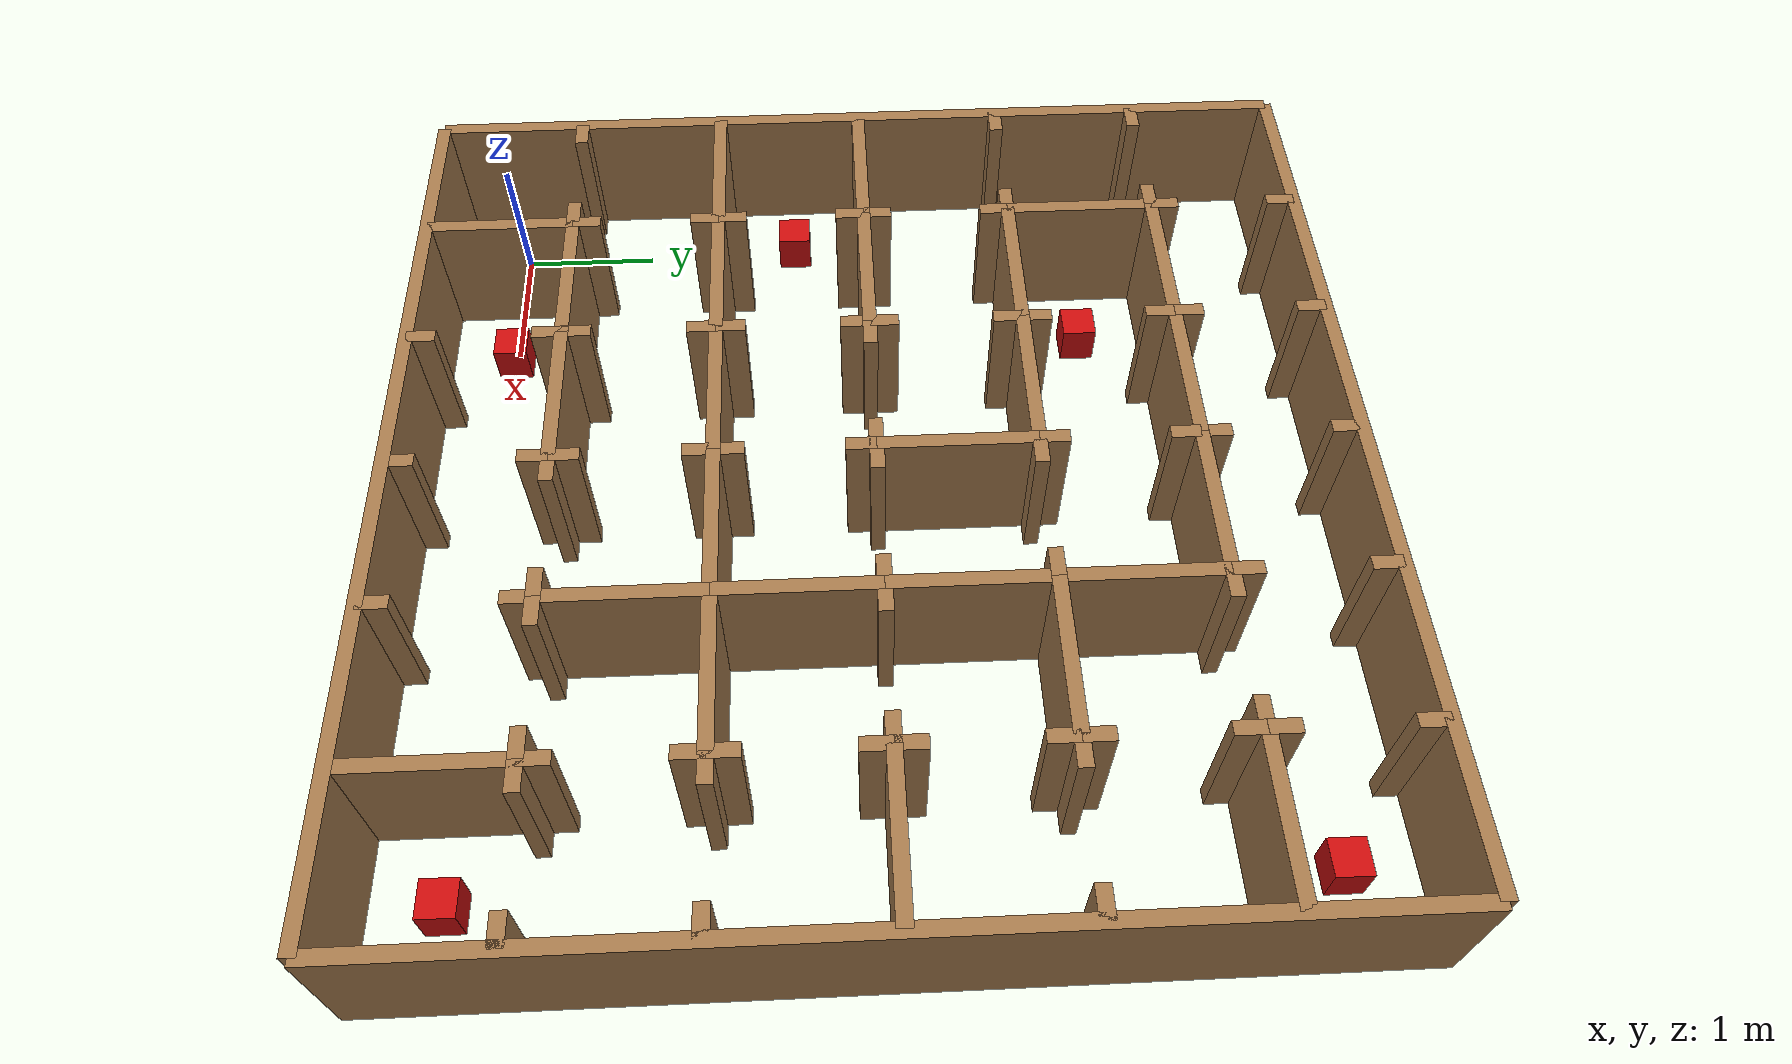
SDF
<sdf version="1.5">
 <world name="tars_borde_callejones">
  <physics type="ode">
   <max_step_size>0.001</max_step_size>
   <real_time_factor>1</real_time_factor>
   <real_time_update_rate>1000</real_time_update_rate>
   <gravity>0 0 -9.8</gravity>
  </physics>
  <plugin filename="gz-sim-physics-system" name="gz::sim::systems::Physics"/>
  <plugin filename="gz-sim-user-commands-system" name="gz::sim::systems::UserCommands"/>
  <plugin filename="gz-sim-scene-broadcaster-system" name="gz::sim::systems::SceneBroadcaster"/>
  <plugin filename="gz-sim-contact-system" name="gz::sim::systems::Contact"/>
  <plugin filename="gz-sim-sensors-system" name="gz::sim::systems::Sensors">
   <render_engine>ogre2</render_engine>
  </plugin>
  <plugin filename="gz-sim-imu-system" name="gz::sim::systems::Imu"/>
  <scene>
   <shadows>false</shadows>
   <ambient>0.2 0.2 0.2 1</ambient>
   <background>1 1 1 1</background>
   <grid>false</grid>
   <origin_visual>false</origin_visual>
  </scene>
  <include><uri>model://sun</uri></include>
  <light name="camera_spot_1_light" type="spot">
   <pose>-6 4 4 0 -1 -0.8</pose>
   <diffuse>0.5 0.5 0.5 1</diffuse>
   <specular>0.1 0.1 0.1 1</specular>
   <direction>0 0 -1</direction>
   <attenuation>
    <range>20</range>
    <constant>0.2</constant>
    <linear>0.01</linear>
    <quadratic>0.001</quadratic>
   </attenuation>
   <cast_shadows>0</cast_shadows>
   <spot><inner_angle>0.6</inner_angle><outer_angle>1</outer_angle><falloff>1</falloff></spot>
  </light>
  <light name="camera_spot_2_light" type="spot">
   <pose>5 -3 4 0 0.8 -0.6</pose>
   <diffuse>0.5 0.5 0.5 1</diffuse>
   <specular>0.1 0.1 0.1 1</specular>
   <direction>0 0 -1</direction>
   <attenuation>
    <range>20</range>
    <constant>0.3</constant>
    <linear>0.01</linear>
    <quadratic>0.001</quadratic>
   </attenuation>
   <cast_shadows>0</cast_shadows>
   <spot><inner_angle>0.6</inner_angle><outer_angle>1</outer_angle><falloff>1</falloff></spot>
  </light>
  <model name="paredes_borde">
   <static>true</static>
   <link name="pared_1">
    <pose>2.7500000000000004 -0.55 0.5 0 0 0</pose>
    <collision name="collision">
     <geometry><box><size>6.6000000000000005 0.1 1.0</size></box></geometry>
    </collision>
    <visual name="visual">
     <geometry><box><size>6.6000000000000005 0.1 1.0</size></box></geometry>
     <material><ambient>0.65 0.48 0.30 1</ambient><diffuse>0.65 0.48 0.30 1</diffuse></material>
    </visual>
   </link>
   <link name="pared_2">
    <pose>6.050000000000001 2.7500000000000004 0.5 0 0 0</pose>
    <collision name="collision">
     <geometry><box><size>0.1 6.6000000000000005 1.0</size></box></geometry>
    </collision>
    <visual name="visual">
     <geometry><box><size>0.1 6.6000000000000005 1.0</size></box></geometry>
     <material><ambient>0.65 0.48 0.30 1</ambient><diffuse>0.65 0.48 0.30 1</diffuse></material>
    </visual>
   </link>
   <link name="pared_3">
    <pose>2.7500000000000004 6.050000000000001 0.5 0 0 0</pose>
    <collision name="collision">
     <geometry><box><size>6.6000000000000005 0.1 1.0</size></box></geometry>
    </collision>
    <visual name="visual">
     <geometry><box><size>6.6000000000000005 0.1 1.0</size></box></geometry>
     <material><ambient>0.65 0.48 0.30 1</ambient><diffuse>0.65 0.48 0.30 1</diffuse></material>
    </visual>
   </link>
   <link name="pared_4">
    <pose>-0.55 2.7500000000000004 0.5 0 0 0</pose>
    <collision name="collision">
     <geometry><box><size>0.1 6.6000000000000005 1.0</size></box></geometry>
    </collision>
    <visual name="visual">
     <geometry><box><size>0.1 6.6000000000000005 1.0</size></box></geometry>
     <material><ambient>0.65 0.48 0.30 1</ambient><diffuse>0.65 0.48 0.30 1</diffuse></material>
    </visual>
   </link>
   <link name="pared_5">
    <pose>0.55 0.0 0.5 0 0 0</pose>
    <collision name="collision"><geometry><box><size>0.1 1.1 1.0</size></box></geometry></collision>
    <visual name="visual">
     <geometry><box><size>0.1 1.1 1.0</size></box></geometry>
     <material><ambient>0.65 0.48 0.30 1</ambient><diffuse>0.65 0.48 0.30 1</diffuse></material>
    </visual>
   </link>
   <link name="pared_6">
    <pose>-0.44500000000000006 0.55 0.5 0 0 0</pose>
    <collision name="collision">
     <geometry><box><size>0.21000000000000002 0.1 1.0</size></box></geometry>
    </collision>
    <visual name="visual">
     <geometry><box><size>0.21000000000000002 0.1 1.0</size></box></geometry>
     <material><ambient>0.65 0.48 0.30 1</ambient><diffuse>0.65 0.48 0.30 1</diffuse></material>
    </visual>
   </link>
   <link name="pared_7">
    <pose>0.44500000000000006 0.55 0.5 0 0 0</pose>
    <collision name="collision">
     <geometry><box><size>0.21000000000000002 0.1 1.0</size></box></geometry>
    </collision>
    <visual name="visual">
     <geometry><box><size>0.21000000000000002 0.1 1.0</size></box></geometry>
     <material><ambient>0.65 0.48 0.30 1</ambient><diffuse>0.65 0.48 0.30 1</diffuse></material>
    </visual>
   </link>
   <link name="pared_8">
    <pose>0.55 0.655 0.5 0 0 0</pose>
    <collision name="collision">
     <geometry><box><size>0.1 0.20999999999999996 1.0</size></box></geometry>
    </collision>
    <visual name="visual">
     <geometry><box><size>0.1 0.20999999999999996 1.0</size></box></geometry>
     <material><ambient>0.65 0.48 0.30 1</ambient><diffuse>0.65 0.48 0.30 1</diffuse></material>
    </visual>
   </link>
   <link name="pared_9">
    <pose>0.55 1.5450000000000002 0.5 0 0 0</pose>
    <collision name="collision">
     <geometry><box><size>0.1 0.20999999999999996 1.0</size></box></geometry>
    </collision>
    <visual name="visual">
     <geometry><box><size>0.1 0.20999999999999996 1.0</size></box></geometry>
     <material><ambient>0.65 0.48 0.30 1</ambient><diffuse>0.65 0.48 0.30 1</diffuse></material>
    </visual>
   </link>
   <link name="pared_10">
    <pose>0.0 1.6500000000000001 0.5 0 0 0</pose>
    <collision name="collision"><geometry><box><size>1.1 0.1 1.0</size></box></geometry></collision>
    <visual name="visual">
     <geometry><box><size>1.1 0.1 1.0</size></box></geometry>
     <material><ambient>0.65 0.48 0.30 1</ambient><diffuse>0.65 0.48 0.30 1</diffuse></material>
    </visual>
   </link>
   <link name="pared_11">
    <pose>0.55 1.7550000000000001 0.5 0 0 0</pose>
    <collision name="collision">
     <geometry><box><size>0.1 0.20999999999999996 1.0</size></box></geometry>
    </collision>
    <visual name="visual">
     <geometry><box><size>0.1 0.20999999999999996 1.0</size></box></geometry>
     <material><ambient>0.65 0.48 0.30 1</ambient><diffuse>0.65 0.48 0.30 1</diffuse></material>
    </visual>
   </link>
   <link name="pared_12">
    <pose>0.55 2.645 0.5 0 0 0</pose>
    <collision name="collision">
     <geometry><box><size>0.1 0.20999999999999996 1.0</size></box></geometry>
    </collision>
    <visual name="visual">
     <geometry><box><size>0.1 0.20999999999999996 1.0</size></box></geometry>
     <material><ambient>0.65 0.48 0.30 1</ambient><diffuse>0.65 0.48 0.30 1</diffuse></material>
    </visual>
   </link>
   <link name="pared_13">
    <pose>0.0 2.75 0.5 0 0 0</pose>
    <collision name="collision"><geometry><box><size>1.1 0.1 1.0</size></box></geometry></collision>
    <visual name="visual">
     <geometry><box><size>1.1 0.1 1.0</size></box></geometry>
     <material><ambient>0.65 0.48 0.30 1</ambient><diffuse>0.65 0.48 0.30 1</diffuse></material>
    </visual>
   </link>
   <link name="pared_14">
    <pose>0.55 2.8550000000000004 0.5 0 0 0</pose>
    <collision name="collision">
     <geometry><box><size>0.1 0.2100000000000004 1.0</size></box></geometry>
    </collision>
    <visual name="visual">
     <geometry><box><size>0.1 0.2100000000000004 1.0</size></box></geometry>
     <material><ambient>0.65 0.48 0.30 1</ambient><diffuse>0.65 0.48 0.30 1</diffuse></material>
    </visual>
   </link>
   <link name="pared_15">
    <pose>0.55 3.745 0.5 0 0 0</pose>
    <collision name="collision">
     <geometry><box><size>0.1 0.2100000000000004 1.0</size></box></geometry>
    </collision>
    <visual name="visual">
     <geometry><box><size>0.1 0.2100000000000004 1.0</size></box></geometry>
     <material><ambient>0.65 0.48 0.30 1</ambient><diffuse>0.65 0.48 0.30 1</diffuse></material>
    </visual>
   </link>
   <link name="pared_16">
    <pose>-0.44500000000000006 3.8500000000000005 0.5 0 0 0</pose>
    <collision name="collision">
     <geometry><box><size>0.21000000000000002 0.1 1.0</size></box></geometry>
    </collision>
    <visual name="visual">
     <geometry><box><size>0.21000000000000002 0.1 1.0</size></box></geometry>
     <material><ambient>0.65 0.48 0.30 1</ambient><diffuse>0.65 0.48 0.30 1</diffuse></material>
    </visual>
   </link>
   <link name="pared_17">
    <pose>0.44500000000000006 3.8500000000000005 0.5 0 0 0</pose>
    <collision name="collision">
     <geometry><box><size>0.21000000000000002 0.1 1.0</size></box></geometry>
    </collision>
    <visual name="visual">
     <geometry><box><size>0.21000000000000002 0.1 1.0</size></box></geometry>
     <material><ambient>0.65 0.48 0.30 1</ambient><diffuse>0.65 0.48 0.30 1</diffuse></material>
    </visual>
   </link>
   <link name="pared_18">
    <pose>0.55 4.4 0.5 0 0 0</pose>
    <collision name="collision">
     <geometry><box><size>0.1 1.0999999999999996 1.0</size></box></geometry>
    </collision>
    <visual name="visual">
     <geometry><box><size>0.1 1.0999999999999996 1.0</size></box></geometry>
     <material><ambient>0.65 0.48 0.30 1</ambient><diffuse>0.65 0.48 0.30 1</diffuse></material>
    </visual>
   </link>
   <link name="pared_19">
    <pose>-0.44500000000000006 4.95 0.5 0 0 0</pose>
    <collision name="collision">
     <geometry><box><size>0.21000000000000002 0.1 1.0</size></box></geometry>
    </collision>
    <visual name="visual">
     <geometry><box><size>0.21000000000000002 0.1 1.0</size></box></geometry>
     <material><ambient>0.65 0.48 0.30 1</ambient><diffuse>0.65 0.48 0.30 1</diffuse></material>
    </visual>
   </link>
   <link name="pared_20">
    <pose>0.44500000000000006 4.95 0.5 0 0 0</pose>
    <collision name="collision">
     <geometry><box><size>0.21000000000000002 0.1 1.0</size></box></geometry>
    </collision>
    <visual name="visual">
     <geometry><box><size>0.21000000000000002 0.1 1.0</size></box></geometry>
     <material><ambient>0.65 0.48 0.30 1</ambient><diffuse>0.65 0.48 0.30 1</diffuse></material>
    </visual>
   </link>
   <link name="pared_21">
    <pose>0.55 5.055 0.5 0 0 0</pose>
    <collision name="collision">
     <geometry><box><size>0.1 0.20999999999999996 1.0</size></box></geometry>
    </collision>
    <visual name="visual">
     <geometry><box><size>0.1 0.20999999999999996 1.0</size></box></geometry>
     <material><ambient>0.65 0.48 0.30 1</ambient><diffuse>0.65 0.48 0.30 1</diffuse></material>
    </visual>
   </link>
   <link name="pared_22">
    <pose>0.55 5.945 0.5 0 0 0</pose>
    <collision name="collision">
     <geometry><box><size>0.1 0.20999999999999996 1.0</size></box></geometry>
    </collision>
    <visual name="visual">
     <geometry><box><size>0.1 0.20999999999999996 1.0</size></box></geometry>
     <material><ambient>0.65 0.48 0.30 1</ambient><diffuse>0.65 0.48 0.30 1</diffuse></material>
    </visual>
   </link>
   <link name="pared_23">
    <pose>1.6500000000000001 -0.44500000000000006 0.5 0 0 0</pose>
    <collision name="collision">
     <geometry><box><size>0.1 0.21000000000000002 1.0</size></box></geometry>
    </collision>
    <visual name="visual">
     <geometry><box><size>0.1 0.21000000000000002 1.0</size></box></geometry>
     <material><ambient>0.65 0.48 0.30 1</ambient><diffuse>0.65 0.48 0.30 1</diffuse></material>
    </visual>
   </link>
   <link name="pared_24">
    <pose>1.6500000000000001 0.44500000000000006 0.5 0 0 0</pose>
    <collision name="collision">
     <geometry><box><size>0.1 0.21000000000000002 1.0</size></box></geometry>
    </collision>
    <visual name="visual">
     <geometry><box><size>0.1 0.21000000000000002 1.0</size></box></geometry>
     <material><ambient>0.65 0.48 0.30 1</ambient><diffuse>0.65 0.48 0.30 1</diffuse></material>
    </visual>
   </link>
   <link name="pared_25">
    <pose>1.1 0.55 0.5 0 0 0</pose>
    <collision name="collision"><geometry><box><size>1.1 0.1 1.0</size></box></geometry></collision>
    <visual name="visual">
     <geometry><box><size>1.1 0.1 1.0</size></box></geometry>
     <material><ambient>0.65 0.48 0.30 1</ambient><diffuse>0.65 0.48 0.30 1</diffuse></material>
    </visual>
   </link>
   <link name="pared_26">
    <pose>1.6500000000000001 0.655 0.5 0 0 0</pose>
    <collision name="collision">
     <geometry><box><size>0.1 0.20999999999999996 1.0</size></box></geometry>
    </collision>
    <visual name="visual">
     <geometry><box><size>0.1 0.20999999999999996 1.0</size></box></geometry>
     <material><ambient>0.65 0.48 0.30 1</ambient><diffuse>0.65 0.48 0.30 1</diffuse></material>
    </visual>
   </link>
   <link name="pared_27">
    <pose>1.6500000000000001 1.5450000000000002 0.5 0 0 0</pose>
    <collision name="collision">
     <geometry><box><size>0.1 0.20999999999999996 1.0</size></box></geometry>
    </collision>
    <visual name="visual">
     <geometry><box><size>0.1 0.20999999999999996 1.0</size></box></geometry>
     <material><ambient>0.65 0.48 0.30 1</ambient><diffuse>0.65 0.48 0.30 1</diffuse></material>
    </visual>
   </link>
   <link name="pared_28">
    <pose>1.1 1.6500000000000001 0.5 0 0 0</pose>
    <collision name="collision"><geometry><box><size>1.1 0.1 1.0</size></box></geometry></collision>
    <visual name="visual">
     <geometry><box><size>1.1 0.1 1.0</size></box></geometry>
     <material><ambient>0.65 0.48 0.30 1</ambient><diffuse>0.65 0.48 0.30 1</diffuse></material>
    </visual>
   </link>
   <link name="pared_29">
    <pose>1.6500000000000001 1.7550000000000001 0.5 0 0 0</pose>
    <collision name="collision">
     <geometry><box><size>0.1 0.20999999999999996 1.0</size></box></geometry>
    </collision>
    <visual name="visual">
     <geometry><box><size>0.1 0.20999999999999996 1.0</size></box></geometry>
     <material><ambient>0.65 0.48 0.30 1</ambient><diffuse>0.65 0.48 0.30 1</diffuse></material>
    </visual>
   </link>
   <link name="pared_30">
    <pose>1.6500000000000001 2.645 0.5 0 0 0</pose>
    <collision name="collision">
     <geometry><box><size>0.1 0.20999999999999996 1.0</size></box></geometry>
    </collision>
    <visual name="visual">
     <geometry><box><size>0.1 0.20999999999999996 1.0</size></box></geometry>
     <material><ambient>0.65 0.48 0.30 1</ambient><diffuse>0.65 0.48 0.30 1</diffuse></material>
    </visual>
   </link>
   <link name="pared_31">
    <pose>1.1 2.75 0.5 0 0 0</pose>
    <collision name="collision"><geometry><box><size>1.1 0.1 1.0</size></box></geometry></collision>
    <visual name="visual">
     <geometry><box><size>1.1 0.1 1.0</size></box></geometry>
     <material><ambient>0.65 0.48 0.30 1</ambient><diffuse>0.65 0.48 0.30 1</diffuse></material>
    </visual>
   </link>
   <link name="pared_32">
    <pose>1.6500000000000001 2.8550000000000004 0.5 0 0 0</pose>
    <collision name="collision">
     <geometry><box><size>0.1 0.2100000000000004 1.0</size></box></geometry>
    </collision>
    <visual name="visual">
     <geometry><box><size>0.1 0.2100000000000004 1.0</size></box></geometry>
     <material><ambient>0.65 0.48 0.30 1</ambient><diffuse>0.65 0.48 0.30 1</diffuse></material>
    </visual>
   </link>
   <link name="pared_33">
    <pose>1.6500000000000001 3.745 0.5 0 0 0</pose>
    <collision name="collision">
     <geometry><box><size>0.1 0.2100000000000004 1.0</size></box></geometry>
    </collision>
    <visual name="visual">
     <geometry><box><size>0.1 0.2100000000000004 1.0</size></box></geometry>
     <material><ambient>0.65 0.48 0.30 1</ambient><diffuse>0.65 0.48 0.30 1</diffuse></material>
    </visual>
   </link>
   <link name="pared_34">
    <pose>1.1 3.8500000000000005 0.5 0 0 0</pose>
    <collision name="collision"><geometry><box><size>1.1 0.1 1.0</size></box></geometry></collision>
    <visual name="visual">
     <geometry><box><size>1.1 0.1 1.0</size></box></geometry>
     <material><ambient>0.65 0.48 0.30 1</ambient><diffuse>0.65 0.48 0.30 1</diffuse></material>
    </visual>
   </link>
   <link name="pared_35">
    <pose>1.6500000000000001 3.9550000000000005 0.5 0 0 0</pose>
    <collision name="collision">
     <geometry><box><size>0.1 0.20999999999999996 1.0</size></box></geometry>
    </collision>
    <visual name="visual">
     <geometry><box><size>0.1 0.20999999999999996 1.0</size></box></geometry>
     <material><ambient>0.65 0.48 0.30 1</ambient><diffuse>0.65 0.48 0.30 1</diffuse></material>
    </visual>
   </link>
   <link name="pared_36">
    <pose>1.6500000000000001 4.845000000000001 0.5 0 0 0</pose>
    <collision name="collision">
     <geometry><box><size>0.1 0.20999999999999996 1.0</size></box></geometry>
    </collision>
    <visual name="visual">
     <geometry><box><size>0.1 0.20999999999999996 1.0</size></box></geometry>
     <material><ambient>0.65 0.48 0.30 1</ambient><diffuse>0.65 0.48 0.30 1</diffuse></material>
    </visual>
   </link>
   <link name="pared_37">
    <pose>1.1 4.95 0.5 0 0 0</pose>
    <collision name="collision"><geometry><box><size>1.1 0.1 1.0</size></box></geometry></collision>
    <visual name="visual">
     <geometry><box><size>1.1 0.1 1.0</size></box></geometry>
     <material><ambient>0.65 0.48 0.30 1</ambient><diffuse>0.65 0.48 0.30 1</diffuse></material>
    </visual>
   </link>
   <link name="pared_38">
    <pose>1.6500000000000001 5.055 0.5 0 0 0</pose>
    <collision name="collision">
     <geometry><box><size>0.1 0.20999999999999996 1.0</size></box></geometry>
    </collision>
    <visual name="visual">
     <geometry><box><size>0.1 0.20999999999999996 1.0</size></box></geometry>
     <material><ambient>0.65 0.48 0.30 1</ambient><diffuse>0.65 0.48 0.30 1</diffuse></material>
    </visual>
   </link>
   <link name="pared_39">
    <pose>1.6500000000000001 5.945 0.5 0 0 0</pose>
    <collision name="collision">
     <geometry><box><size>0.1 0.20999999999999996 1.0</size></box></geometry>
    </collision>
    <visual name="visual">
     <geometry><box><size>0.1 0.20999999999999996 1.0</size></box></geometry>
     <material><ambient>0.65 0.48 0.30 1</ambient><diffuse>0.65 0.48 0.30 1</diffuse></material>
    </visual>
   </link>
   <link name="pared_40">
    <pose>2.75 -0.44500000000000006 0.5 0 0 0</pose>
    <collision name="collision">
     <geometry><box><size>0.1 0.21000000000000002 1.0</size></box></geometry>
    </collision>
    <visual name="visual">
     <geometry><box><size>0.1 0.21000000000000002 1.0</size></box></geometry>
     <material><ambient>0.65 0.48 0.30 1</ambient><diffuse>0.65 0.48 0.30 1</diffuse></material>
    </visual>
   </link>
   <link name="pared_41">
    <pose>2.75 0.44500000000000006 0.5 0 0 0</pose>
    <collision name="collision">
     <geometry><box><size>0.1 0.21000000000000002 1.0</size></box></geometry>
    </collision>
    <visual name="visual">
     <geometry><box><size>0.1 0.21000000000000002 1.0</size></box></geometry>
     <material><ambient>0.65 0.48 0.30 1</ambient><diffuse>0.65 0.48 0.30 1</diffuse></material>
    </visual>
   </link>
   <link name="pared_42">
    <pose>2.2 0.55 0.5 0 0 0</pose>
    <collision name="collision">
     <geometry><box><size>1.0999999999999999 0.1 1.0</size></box></geometry>
    </collision>
    <visual name="visual">
     <geometry><box><size>1.0999999999999999 0.1 1.0</size></box></geometry>
     <material><ambient>0.65 0.48 0.30 1</ambient><diffuse>0.65 0.48 0.30 1</diffuse></material>
    </visual>
   </link>
   <link name="pared_43">
    <pose>2.75 0.655 0.5 0 0 0</pose>
    <collision name="collision">
     <geometry><box><size>0.1 0.20999999999999996 1.0</size></box></geometry>
    </collision>
    <visual name="visual">
     <geometry><box><size>0.1 0.20999999999999996 1.0</size></box></geometry>
     <material><ambient>0.65 0.48 0.30 1</ambient><diffuse>0.65 0.48 0.30 1</diffuse></material>
    </visual>
   </link>
   <link name="pared_44">
    <pose>2.75 1.5450000000000002 0.5 0 0 0</pose>
    <collision name="collision">
     <geometry><box><size>0.1 0.20999999999999996 1.0</size></box></geometry>
    </collision>
    <visual name="visual">
     <geometry><box><size>0.1 0.20999999999999996 1.0</size></box></geometry>
     <material><ambient>0.65 0.48 0.30 1</ambient><diffuse>0.65 0.48 0.30 1</diffuse></material>
    </visual>
   </link>
   <link name="pared_45">
    <pose>2.2 1.6500000000000001 0.5 0 0 0</pose>
    <collision name="collision">
     <geometry><box><size>1.0999999999999999 0.1 1.0</size></box></geometry>
    </collision>
    <visual name="visual">
     <geometry><box><size>1.0999999999999999 0.1 1.0</size></box></geometry>
     <material><ambient>0.65 0.48 0.30 1</ambient><diffuse>0.65 0.48 0.30 1</diffuse></material>
    </visual>
   </link>
   <link name="pared_46">
    <pose>2.75 1.7550000000000001 0.5 0 0 0</pose>
    <collision name="collision">
     <geometry><box><size>0.1 0.20999999999999996 1.0</size></box></geometry>
    </collision>
    <visual name="visual">
     <geometry><box><size>0.1 0.20999999999999996 1.0</size></box></geometry>
     <material><ambient>0.65 0.48 0.30 1</ambient><diffuse>0.65 0.48 0.30 1</diffuse></material>
    </visual>
   </link>
   <link name="pared_47">
    <pose>2.75 2.645 0.5 0 0 0</pose>
    <collision name="collision">
     <geometry><box><size>0.1 0.20999999999999996 1.0</size></box></geometry>
    </collision>
    <visual name="visual">
     <geometry><box><size>0.1 0.20999999999999996 1.0</size></box></geometry>
     <material><ambient>0.65 0.48 0.30 1</ambient><diffuse>0.65 0.48 0.30 1</diffuse></material>
    </visual>
   </link>
   <link name="pared_48">
    <pose>1.7550000000000001 2.75 0.5 0 0 0</pose>
    <collision name="collision">
     <geometry><box><size>0.20999999999999996 0.1 1.0</size></box></geometry>
    </collision>
    <visual name="visual">
     <geometry><box><size>0.20999999999999996 0.1 1.0</size></box></geometry>
     <material><ambient>0.65 0.48 0.30 1</ambient><diffuse>0.65 0.48 0.30 1</diffuse></material>
    </visual>
   </link>
   <link name="pared_49">
    <pose>2.645 2.75 0.5 0 0 0</pose>
    <collision name="collision">
     <geometry><box><size>0.20999999999999996 0.1 1.0</size></box></geometry>
    </collision>
    <visual name="visual">
     <geometry><box><size>0.20999999999999996 0.1 1.0</size></box></geometry>
     <material><ambient>0.65 0.48 0.30 1</ambient><diffuse>0.65 0.48 0.30 1</diffuse></material>
    </visual>
   </link>
   <link name="pared_50">
    <pose>2.75 3.3000000000000003 0.5 0 0 0</pose>
    <collision name="collision">
     <geometry><box><size>0.1 1.1000000000000005 1.0</size></box></geometry>
    </collision>
    <visual name="visual">
     <geometry><box><size>0.1 1.1000000000000005 1.0</size></box></geometry>
     <material><ambient>0.65 0.48 0.30 1</ambient><diffuse>0.65 0.48 0.30 1</diffuse></material>
    </visual>
   </link>
   <link name="pared_51">
    <pose>2.2 3.8500000000000005 0.5 0 0 0</pose>
    <collision name="collision">
     <geometry><box><size>1.0999999999999999 0.1 1.0</size></box></geometry>
    </collision>
    <visual name="visual">
     <geometry><box><size>1.0999999999999999 0.1 1.0</size></box></geometry>
     <material><ambient>0.65 0.48 0.30 1</ambient><diffuse>0.65 0.48 0.30 1</diffuse></material>
    </visual>
   </link>
   <link name="pared_52">
    <pose>2.75 3.9550000000000005 0.5 0 0 0</pose>
    <collision name="collision">
     <geometry><box><size>0.1 0.20999999999999996 1.0</size></box></geometry>
    </collision>
    <visual name="visual">
     <geometry><box><size>0.1 0.20999999999999996 1.0</size></box></geometry>
     <material><ambient>0.65 0.48 0.30 1</ambient><diffuse>0.65 0.48 0.30 1</diffuse></material>
    </visual>
   </link>
   <link name="pared_53">
    <pose>2.75 4.845000000000001 0.5 0 0 0</pose>
    <collision name="collision">
     <geometry><box><size>0.1 0.20999999999999996 1.0</size></box></geometry>
    </collision>
    <visual name="visual">
     <geometry><box><size>0.1 0.20999999999999996 1.0</size></box></geometry>
     <material><ambient>0.65 0.48 0.30 1</ambient><diffuse>0.65 0.48 0.30 1</diffuse></material>
    </visual>
   </link>
   <link name="pared_54">
    <pose>2.2 4.95 0.5 0 0 0</pose>
    <collision name="collision">
     <geometry><box><size>1.0999999999999999 0.1 1.0</size></box></geometry>
    </collision>
    <visual name="visual">
     <geometry><box><size>1.0999999999999999 0.1 1.0</size></box></geometry>
     <material><ambient>0.65 0.48 0.30 1</ambient><diffuse>0.65 0.48 0.30 1</diffuse></material>
    </visual>
   </link>
   <link name="pared_55">
    <pose>2.75 5.055 0.5 0 0 0</pose>
    <collision name="collision">
     <geometry><box><size>0.1 0.20999999999999996 1.0</size></box></geometry>
    </collision>
    <visual name="visual">
     <geometry><box><size>0.1 0.20999999999999996 1.0</size></box></geometry>
     <material><ambient>0.65 0.48 0.30 1</ambient><diffuse>0.65 0.48 0.30 1</diffuse></material>
    </visual>
   </link>
   <link name="pared_56">
    <pose>2.75 5.945 0.5 0 0 0</pose>
    <collision name="collision">
     <geometry><box><size>0.1 0.20999999999999996 1.0</size></box></geometry>
    </collision>
    <visual name="visual">
     <geometry><box><size>0.1 0.20999999999999996 1.0</size></box></geometry>
     <material><ambient>0.65 0.48 0.30 1</ambient><diffuse>0.65 0.48 0.30 1</diffuse></material>
    </visual>
   </link>
   <link name="pared_57">
    <pose>3.8500000000000005 -0.44500000000000006 0.5 0 0 0</pose>
    <collision name="collision">
     <geometry><box><size>0.1 0.21000000000000002 1.0</size></box></geometry>
    </collision>
    <visual name="visual">
     <geometry><box><size>0.1 0.21000000000000002 1.0</size></box></geometry>
     <material><ambient>0.65 0.48 0.30 1</ambient><diffuse>0.65 0.48 0.30 1</diffuse></material>
    </visual>
   </link>
   <link name="pared_58">
    <pose>3.8500000000000005 0.44500000000000006 0.5 0 0 0</pose>
    <collision name="collision">
     <geometry><box><size>0.1 0.21000000000000002 1.0</size></box></geometry>
    </collision>
    <visual name="visual">
     <geometry><box><size>0.1 0.21000000000000002 1.0</size></box></geometry>
     <material><ambient>0.65 0.48 0.30 1</ambient><diffuse>0.65 0.48 0.30 1</diffuse></material>
    </visual>
   </link>
   <link name="pared_59">
    <pose>2.8550000000000004 0.55 0.5 0 0 0</pose>
    <collision name="collision">
     <geometry><box><size>0.2100000000000004 0.1 1.0</size></box></geometry>
    </collision>
    <visual name="visual">
     <geometry><box><size>0.2100000000000004 0.1 1.0</size></box></geometry>
     <material><ambient>0.65 0.48 0.30 1</ambient><diffuse>0.65 0.48 0.30 1</diffuse></material>
    </visual>
   </link>
   <link name="pared_60">
    <pose>3.745 0.55 0.5 0 0 0</pose>
    <collision name="collision">
     <geometry><box><size>0.2100000000000004 0.1 1.0</size></box></geometry>
    </collision>
    <visual name="visual">
     <geometry><box><size>0.2100000000000004 0.1 1.0</size></box></geometry>
     <material><ambient>0.65 0.48 0.30 1</ambient><diffuse>0.65 0.48 0.30 1</diffuse></material>
    </visual>
   </link>
   <link name="pared_61">
    <pose>3.8500000000000005 1.1 0.5 0 0 0</pose>
    <collision name="collision"><geometry><box><size>0.1 1.1 1.0</size></box></geometry></collision>
    <visual name="visual">
     <geometry><box><size>0.1 1.1 1.0</size></box></geometry>
     <material><ambient>0.65 0.48 0.30 1</ambient><diffuse>0.65 0.48 0.30 1</diffuse></material>
    </visual>
   </link>
   <link name="pared_62">
    <pose>3.3000000000000003 1.6500000000000001 0.5 0 0 0</pose>
    <collision name="collision">
     <geometry><box><size>1.1000000000000005 0.1 1.0</size></box></geometry>
    </collision>
    <visual name="visual">
     <geometry><box><size>1.1000000000000005 0.1 1.0</size></box></geometry>
     <material><ambient>0.65 0.48 0.30 1</ambient><diffuse>0.65 0.48 0.30 1</diffuse></material>
    </visual>
   </link>
   <link name="pared_63">
    <pose>3.8500000000000005 2.2 0.5 0 0 0</pose>
    <collision name="collision">
     <geometry><box><size>0.1 1.0999999999999999 1.0</size></box></geometry>
    </collision>
    <visual name="visual">
     <geometry><box><size>0.1 1.0999999999999999 1.0</size></box></geometry>
     <material><ambient>0.65 0.48 0.30 1</ambient><diffuse>0.65 0.48 0.30 1</diffuse></material>
    </visual>
   </link>
   <link name="pared_64">
    <pose>2.8550000000000004 2.75 0.5 0 0 0</pose>
    <collision name="collision">
     <geometry><box><size>0.2100000000000004 0.1 1.0</size></box></geometry>
    </collision>
    <visual name="visual">
     <geometry><box><size>0.2100000000000004 0.1 1.0</size></box></geometry>
     <material><ambient>0.65 0.48 0.30 1</ambient><diffuse>0.65 0.48 0.30 1</diffuse></material>
    </visual>
   </link>
   <link name="pared_65">
    <pose>3.745 2.75 0.5 0 0 0</pose>
    <collision name="collision">
     <geometry><box><size>0.2100000000000004 0.1 1.0</size></box></geometry>
    </collision>
    <visual name="visual">
     <geometry><box><size>0.2100000000000004 0.1 1.0</size></box></geometry>
     <material><ambient>0.65 0.48 0.30 1</ambient><diffuse>0.65 0.48 0.30 1</diffuse></material>
    </visual>
   </link>
   <link name="pared_66">
    <pose>3.8500000000000005 3.3000000000000003 0.5 0 0 0</pose>
    <collision name="collision">
     <geometry><box><size>0.1 1.1000000000000005 1.0</size></box></geometry>
    </collision>
    <visual name="visual">
     <geometry><box><size>0.1 1.1000000000000005 1.0</size></box></geometry>
     <material><ambient>0.65 0.48 0.30 1</ambient><diffuse>0.65 0.48 0.30 1</diffuse></material>
    </visual>
   </link>
   <link name="pared_67">
    <pose>2.8550000000000004 3.8500000000000005 0.5 0 0 0</pose>
    <collision name="collision">
     <geometry><box><size>0.2100000000000004 0.1 1.0</size></box></geometry>
    </collision>
    <visual name="visual">
     <geometry><box><size>0.2100000000000004 0.1 1.0</size></box></geometry>
     <material><ambient>0.65 0.48 0.30 1</ambient><diffuse>0.65 0.48 0.30 1</diffuse></material>
    </visual>
   </link>
   <link name="pared_68">
    <pose>3.745 3.8500000000000005 0.5 0 0 0</pose>
    <collision name="collision">
     <geometry><box><size>0.2100000000000004 0.1 1.0</size></box></geometry>
    </collision>
    <visual name="visual">
     <geometry><box><size>0.2100000000000004 0.1 1.0</size></box></geometry>
     <material><ambient>0.65 0.48 0.30 1</ambient><diffuse>0.65 0.48 0.30 1</diffuse></material>
    </visual>
   </link>
   <link name="pared_69">
    <pose>3.8500000000000005 4.4 0.5 0 0 0</pose>
    <collision name="collision">
     <geometry><box><size>0.1 1.0999999999999996 1.0</size></box></geometry>
    </collision>
    <visual name="visual">
     <geometry><box><size>0.1 1.0999999999999996 1.0</size></box></geometry>
     <material><ambient>0.65 0.48 0.30 1</ambient><diffuse>0.65 0.48 0.30 1</diffuse></material>
    </visual>
   </link>
   <link name="pared_70">
    <pose>3.3000000000000003 4.95 0.5 0 0 0</pose>
    <collision name="collision">
     <geometry><box><size>1.1000000000000005 0.1 1.0</size></box></geometry>
    </collision>
    <visual name="visual">
     <geometry><box><size>1.1000000000000005 0.1 1.0</size></box></geometry>
     <material><ambient>0.65 0.48 0.30 1</ambient><diffuse>0.65 0.48 0.30 1</diffuse></material>
    </visual>
   </link>
   <link name="pared_71">
    <pose>3.8500000000000005 5.055 0.5 0 0 0</pose>
    <collision name="collision">
     <geometry><box><size>0.1 0.20999999999999996 1.0</size></box></geometry>
    </collision>
    <visual name="visual">
     <geometry><box><size>0.1 0.20999999999999996 1.0</size></box></geometry>
     <material><ambient>0.65 0.48 0.30 1</ambient><diffuse>0.65 0.48 0.30 1</diffuse></material>
    </visual>
   </link>
   <link name="pared_72">
    <pose>3.8500000000000005 5.945 0.5 0 0 0</pose>
    <collision name="collision">
     <geometry><box><size>0.1 0.20999999999999996 1.0</size></box></geometry>
    </collision>
    <visual name="visual">
     <geometry><box><size>0.1 0.20999999999999996 1.0</size></box></geometry>
     <material><ambient>0.65 0.48 0.30 1</ambient><diffuse>0.65 0.48 0.30 1</diffuse></material>
    </visual>
   </link>
   <link name="pared_73">
    <pose>4.95 0.0 0.5 0 0 0</pose>
    <collision name="collision"><geometry><box><size>0.1 1.1 1.0</size></box></geometry></collision>
    <visual name="visual">
     <geometry><box><size>0.1 1.1 1.0</size></box></geometry>
     <material><ambient>0.65 0.48 0.30 1</ambient><diffuse>0.65 0.48 0.30 1</diffuse></material>
    </visual>
   </link>
   <link name="pared_74">
    <pose>3.9550000000000005 0.55 0.5 0 0 0</pose>
    <collision name="collision">
     <geometry><box><size>0.20999999999999996 0.1 1.0</size></box></geometry>
    </collision>
    <visual name="visual">
     <geometry><box><size>0.20999999999999996 0.1 1.0</size></box></geometry>
     <material><ambient>0.65 0.48 0.30 1</ambient><diffuse>0.65 0.48 0.30 1</diffuse></material>
    </visual>
   </link>
   <link name="pared_75">
    <pose>4.845000000000001 0.55 0.5 0 0 0</pose>
    <collision name="collision">
     <geometry><box><size>0.20999999999999996 0.1 1.0</size></box></geometry>
    </collision>
    <visual name="visual">
     <geometry><box><size>0.20999999999999996 0.1 1.0</size></box></geometry>
     <material><ambient>0.65 0.48 0.30 1</ambient><diffuse>0.65 0.48 0.30 1</diffuse></material>
    </visual>
   </link>
   <link name="pared_76">
    <pose>4.95 0.655 0.5 0 0 0</pose>
    <collision name="collision">
     <geometry><box><size>0.1 0.20999999999999996 1.0</size></box></geometry>
    </collision>
    <visual name="visual">
     <geometry><box><size>0.1 0.20999999999999996 1.0</size></box></geometry>
     <material><ambient>0.65 0.48 0.30 1</ambient><diffuse>0.65 0.48 0.30 1</diffuse></material>
    </visual>
   </link>
   <link name="pared_77">
    <pose>4.95 1.5450000000000002 0.5 0 0 0</pose>
    <collision name="collision">
     <geometry><box><size>0.1 0.20999999999999996 1.0</size></box></geometry>
    </collision>
    <visual name="visual">
     <geometry><box><size>0.1 0.20999999999999996 1.0</size></box></geometry>
     <material><ambient>0.65 0.48 0.30 1</ambient><diffuse>0.65 0.48 0.30 1</diffuse></material>
    </visual>
   </link>
   <link name="pared_78">
    <pose>4.4 1.6500000000000001 0.5 0 0 0</pose>
    <collision name="collision">
     <geometry><box><size>1.0999999999999996 0.1 1.0</size></box></geometry>
    </collision>
    <visual name="visual">
     <geometry><box><size>1.0999999999999996 0.1 1.0</size></box></geometry>
     <material><ambient>0.65 0.48 0.30 1</ambient><diffuse>0.65 0.48 0.30 1</diffuse></material>
    </visual>
   </link>
   <link name="pared_79">
    <pose>4.95 1.7550000000000001 0.5 0 0 0</pose>
    <collision name="collision">
     <geometry><box><size>0.1 0.20999999999999996 1.0</size></box></geometry>
    </collision>
    <visual name="visual">
     <geometry><box><size>0.1 0.20999999999999996 1.0</size></box></geometry>
     <material><ambient>0.65 0.48 0.30 1</ambient><diffuse>0.65 0.48 0.30 1</diffuse></material>
    </visual>
   </link>
   <link name="pared_80">
    <pose>4.95 2.645 0.5 0 0 0</pose>
    <collision name="collision">
     <geometry><box><size>0.1 0.20999999999999996 1.0</size></box></geometry>
    </collision>
    <visual name="visual">
     <geometry><box><size>0.1 0.20999999999999996 1.0</size></box></geometry>
     <material><ambient>0.65 0.48 0.30 1</ambient><diffuse>0.65 0.48 0.30 1</diffuse></material>
    </visual>
   </link>
   <link name="pared_81">
    <pose>3.9550000000000005 2.75 0.5 0 0 0</pose>
    <collision name="collision">
     <geometry><box><size>0.20999999999999996 0.1 1.0</size></box></geometry>
    </collision>
    <visual name="visual">
     <geometry><box><size>0.20999999999999996 0.1 1.0</size></box></geometry>
     <material><ambient>0.65 0.48 0.30 1</ambient><diffuse>0.65 0.48 0.30 1</diffuse></material>
    </visual>
   </link>
   <link name="pared_82">
    <pose>4.845000000000001 2.75 0.5 0 0 0</pose>
    <collision name="collision">
     <geometry><box><size>0.20999999999999996 0.1 1.0</size></box></geometry>
    </collision>
    <visual name="visual">
     <geometry><box><size>0.20999999999999996 0.1 1.0</size></box></geometry>
     <material><ambient>0.65 0.48 0.30 1</ambient><diffuse>0.65 0.48 0.30 1</diffuse></material>
    </visual>
   </link>
   <link name="pared_83">
    <pose>4.95 2.8550000000000004 0.5 0 0 0</pose>
    <collision name="collision">
     <geometry><box><size>0.1 0.2100000000000004 1.0</size></box></geometry>
    </collision>
    <visual name="visual">
     <geometry><box><size>0.1 0.2100000000000004 1.0</size></box></geometry>
     <material><ambient>0.65 0.48 0.30 1</ambient><diffuse>0.65 0.48 0.30 1</diffuse></material>
    </visual>
   </link>
   <link name="pared_84">
    <pose>4.95 3.745 0.5 0 0 0</pose>
    <collision name="collision">
     <geometry><box><size>0.1 0.2100000000000004 1.0</size></box></geometry>
    </collision>
    <visual name="visual">
     <geometry><box><size>0.1 0.2100000000000004 1.0</size></box></geometry>
     <material><ambient>0.65 0.48 0.30 1</ambient><diffuse>0.65 0.48 0.30 1</diffuse></material>
    </visual>
   </link>
   <link name="pared_85">
    <pose>4.4 3.8500000000000005 0.5 0 0 0</pose>
    <collision name="collision">
     <geometry><box><size>1.0999999999999996 0.1 1.0</size></box></geometry>
    </collision>
    <visual name="visual">
     <geometry><box><size>1.0999999999999996 0.1 1.0</size></box></geometry>
     <material><ambient>0.65 0.48 0.30 1</ambient><diffuse>0.65 0.48 0.30 1</diffuse></material>
    </visual>
   </link>
   <link name="pared_86">
    <pose>4.95 3.9550000000000005 0.5 0 0 0</pose>
    <collision name="collision">
     <geometry><box><size>0.1 0.20999999999999996 1.0</size></box></geometry>
    </collision>
    <visual name="visual">
     <geometry><box><size>0.1 0.20999999999999996 1.0</size></box></geometry>
     <material><ambient>0.65 0.48 0.30 1</ambient><diffuse>0.65 0.48 0.30 1</diffuse></material>
    </visual>
   </link>
   <link name="pared_87">
    <pose>4.95 4.845000000000001 0.5 0 0 0</pose>
    <collision name="collision">
     <geometry><box><size>0.1 0.20999999999999996 1.0</size></box></geometry>
    </collision>
    <visual name="visual">
     <geometry><box><size>0.1 0.20999999999999996 1.0</size></box></geometry>
     <material><ambient>0.65 0.48 0.30 1</ambient><diffuse>0.65 0.48 0.30 1</diffuse></material>
    </visual>
   </link>
   <link name="pared_88">
    <pose>3.9550000000000005 4.95 0.5 0 0 0</pose>
    <collision name="collision">
     <geometry><box><size>0.20999999999999996 0.1 1.0</size></box></geometry>
    </collision>
    <visual name="visual">
     <geometry><box><size>0.20999999999999996 0.1 1.0</size></box></geometry>
     <material><ambient>0.65 0.48 0.30 1</ambient><diffuse>0.65 0.48 0.30 1</diffuse></material>
    </visual>
   </link>
   <link name="pared_89">
    <pose>4.845000000000001 4.95 0.5 0 0 0</pose>
    <collision name="collision">
     <geometry><box><size>0.20999999999999996 0.1 1.0</size></box></geometry>
    </collision>
    <visual name="visual">
     <geometry><box><size>0.20999999999999996 0.1 1.0</size></box></geometry>
     <material><ambient>0.65 0.48 0.30 1</ambient><diffuse>0.65 0.48 0.30 1</diffuse></material>
    </visual>
   </link>
   <link name="pared_90">
    <pose>4.95 5.055 0.5 0 0 0</pose>
    <collision name="collision">
     <geometry><box><size>0.1 0.20999999999999996 1.0</size></box></geometry>
    </collision>
    <visual name="visual">
     <geometry><box><size>0.1 0.20999999999999996 1.0</size></box></geometry>
     <material><ambient>0.65 0.48 0.30 1</ambient><diffuse>0.65 0.48 0.30 1</diffuse></material>
    </visual>
   </link>
   <link name="pared_91">
    <pose>4.95 5.945 0.5 0 0 0</pose>
    <collision name="collision">
     <geometry><box><size>0.1 0.20999999999999996 1.0</size></box></geometry>
    </collision>
    <visual name="visual">
     <geometry><box><size>0.1 0.20999999999999996 1.0</size></box></geometry>
     <material><ambient>0.65 0.48 0.30 1</ambient><diffuse>0.65 0.48 0.30 1</diffuse></material>
    </visual>
   </link>
   <link name="pared_92">
    <pose>5.055 0.55 0.5 0 0 0</pose>
    <collision name="collision">
     <geometry><box><size>0.20999999999999996 0.1 1.0</size></box></geometry>
    </collision>
    <visual name="visual">
     <geometry><box><size>0.20999999999999996 0.1 1.0</size></box></geometry>
     <material><ambient>0.65 0.48 0.30 1</ambient><diffuse>0.65 0.48 0.30 1</diffuse></material>
    </visual>
   </link>
   <link name="pared_93">
    <pose>5.945 0.55 0.5 0 0 0</pose>
    <collision name="collision">
     <geometry><box><size>0.20999999999999996 0.1 1.0</size></box></geometry>
    </collision>
    <visual name="visual">
     <geometry><box><size>0.20999999999999996 0.1 1.0</size></box></geometry>
     <material><ambient>0.65 0.48 0.30 1</ambient><diffuse>0.65 0.48 0.30 1</diffuse></material>
    </visual>
   </link>
   <link name="pared_94">
    <pose>5.055 1.6500000000000001 0.5 0 0 0</pose>
    <collision name="collision">
     <geometry><box><size>0.20999999999999996 0.1 1.0</size></box></geometry>
    </collision>
    <visual name="visual">
     <geometry><box><size>0.20999999999999996 0.1 1.0</size></box></geometry>
     <material><ambient>0.65 0.48 0.30 1</ambient><diffuse>0.65 0.48 0.30 1</diffuse></material>
    </visual>
   </link>
   <link name="pared_95">
    <pose>5.945 1.6500000000000001 0.5 0 0 0</pose>
    <collision name="collision">
     <geometry><box><size>0.20999999999999996 0.1 1.0</size></box></geometry>
    </collision>
    <visual name="visual">
     <geometry><box><size>0.20999999999999996 0.1 1.0</size></box></geometry>
     <material><ambient>0.65 0.48 0.30 1</ambient><diffuse>0.65 0.48 0.30 1</diffuse></material>
    </visual>
   </link>
   <link name="pared_96">
    <pose>5.5 2.75 0.5 0 0 0</pose>
    <collision name="collision">
     <geometry><box><size>1.0999999999999996 0.1 1.0</size></box></geometry>
    </collision>
    <visual name="visual">
     <geometry><box><size>1.0999999999999996 0.1 1.0</size></box></geometry>
     <material><ambient>0.65 0.48 0.30 1</ambient><diffuse>0.65 0.48 0.30 1</diffuse></material>
    </visual>
   </link>
   <link name="pared_97">
    <pose>5.055 3.8500000000000005 0.5 0 0 0</pose>
    <collision name="collision">
     <geometry><box><size>0.20999999999999996 0.1 1.0</size></box></geometry>
    </collision>
    <visual name="visual">
     <geometry><box><size>0.20999999999999996 0.1 1.0</size></box></geometry>
     <material><ambient>0.65 0.48 0.30 1</ambient><diffuse>0.65 0.48 0.30 1</diffuse></material>
    </visual>
   </link>
   <link name="pared_98">
    <pose>5.945 3.8500000000000005 0.5 0 0 0</pose>
    <collision name="collision">
     <geometry><box><size>0.20999999999999996 0.1 1.0</size></box></geometry>
    </collision>
    <visual name="visual">
     <geometry><box><size>0.20999999999999996 0.1 1.0</size></box></geometry>
     <material><ambient>0.65 0.48 0.30 1</ambient><diffuse>0.65 0.48 0.30 1</diffuse></material>
    </visual>
   </link>
   <link name="pared_99">
    <pose>5.5 4.95 0.5 0 0 0</pose>
    <collision name="collision">
     <geometry><box><size>1.0999999999999996 0.1 1.0</size></box></geometry>
    </collision>
    <visual name="visual">
     <geometry><box><size>1.0999999999999996 0.1 1.0</size></box></geometry>
     <material><ambient>0.65 0.48 0.30 1</ambient><diffuse>0.65 0.48 0.30 1</diffuse></material>
    </visual>
   </link>
  </model>
  <model name="marcas_color">
   <static>true</static>
   <link name="cuadrado_rojo_1">
    <pose>1.1 4.4 .15 0 0 0</pose>
    <collision name="collision"><geometry><box><size>0.25 0.25 0.3</size></box></geometry></collision>
    <visual name="visual">
     <geometry><box><size>0.25 0.25 0.3</size></box></geometry>
     <material>
      <ambient>0.8 0.05 0.05 1</ambient>
      <diffuse>0.8 0.05 0.05 1</diffuse>
      <specular>0.1 0.1 0.1 1</specular>
     </material>
    </visual>
   </link>
   <link name="cuadrado_rojo_2">
    <pose>0.0 2.2 .15 0 0 0</pose>
    <collision name="collision"><geometry><box><size>0.25 0.25 0.3</size></box></geometry></collision>
    <visual name="visual">
     <geometry><box><size>0.25 0.25 0.3</size></box></geometry>
     <material>
      <ambient>0.8 0.05 0.05 1</ambient>
      <diffuse>0.8 0.05 0.05 1</diffuse>
      <specular>0.1 0.1 0.1 1</specular>
     </material>
    </visual>
   </link>
   <link name="cuadrado_rojo_3">
    <pose>5.5 5.5 .15 0 0 0</pose>
    <collision name="collision"><geometry><box><size>0.25 0.25 0.3</size></box></geometry></collision>
    <visual name="visual">
     <geometry><box><size>0.25 0.25 0.3</size></box></geometry>
     <material>
      <ambient>0.8 0.05 0.05 1</ambient>
      <diffuse>0.8 0.05 0.05 1</diffuse>
      <specular>0.1 0.1 0.1 1</specular>
     </material>
    </visual>
   </link>
   <link name="cuadrado_rojo_4">
    <pose>5.5 0.0 .15 0 0 0</pose>
    <collision name="collision"><geometry><box><size>0.25 0.25 0.3</size></box></geometry></collision>
    <visual name="visual">
     <geometry><box><size>0.25 0.25 0.3</size></box></geometry>
     <material>
      <ambient>0.8 0.05 0.05 1</ambient>
      <diffuse>0.8 0.05 0.05 1</diffuse>
      <specular>0.1 0.1 0.1 1</specular>
     </material>
    </visual>
   </link>
   <link name="cuadrado_rojo_5">
    <pose>1.1 0.0 .15 0 0 0</pose>
    <collision name="collision"><geometry><box><size>0.25 0.25 0.3</size></box></geometry></collision>
    <visual name="visual">
     <geometry><box><size>0.25 0.25 0.3</size></box></geometry>
     <material>
      <ambient>0.8 0.05 0.05 1</ambient>
      <diffuse>0.8 0.05 0.05 1</diffuse>
      <specular>0.1 0.1 0.1 1</specular>
     </material>
    </visual>
   </link>
  </model>
 </world>
</sdf>
